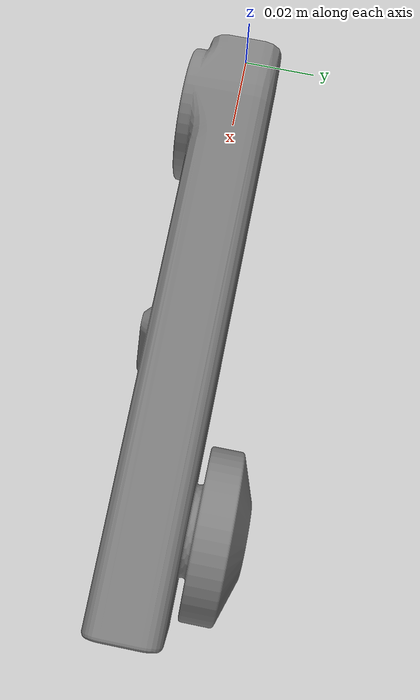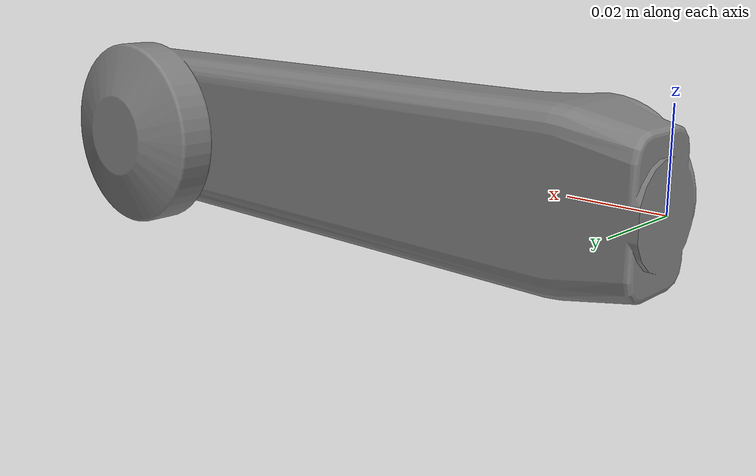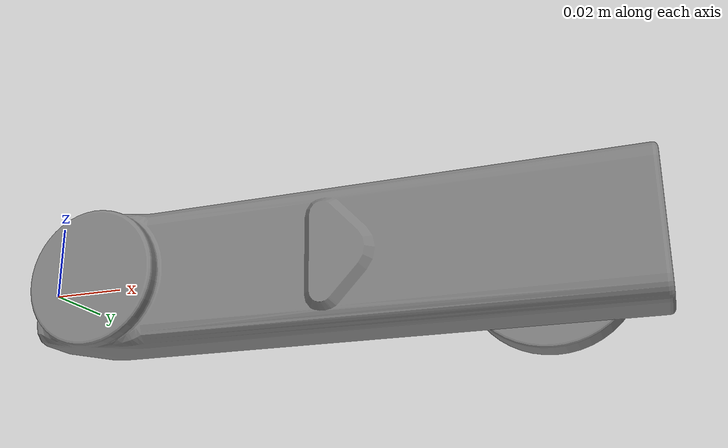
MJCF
<mujoco model="solo12_hip_fe_hr">
  <default>
    <default class="visual">
      <geom group="2" type="mesh" contype="0" conaffinity="0"/>
    </default>
    <default class="collision">
      <geom group="3" type="mesh"/>
    </default>
  </default>
  <asset>
    <mesh file="solo12_hip_fe_hr.obj"/>
    <mesh file="solo12_hip_fe_hr_collision_0.obj"/>
    <mesh file="solo12_hip_fe_hr_collision_1.obj"/>
    <mesh file="solo12_hip_fe_hr_collision_2.obj"/>
    <mesh file="solo12_hip_fe_hr_collision_3.obj"/>
    <mesh file="solo12_hip_fe_hr_collision_4.obj"/>
    <mesh file="solo12_hip_fe_hr_collision_5.obj"/>
    <mesh file="solo12_hip_fe_hr_collision_6.obj"/>
    <mesh file="solo12_hip_fe_hr_collision_7.obj"/>
  </asset>
  <worldbody>
    <body name="solo12_hip_fe_hr">
      <geom mesh="solo12_hip_fe_hr" class="visual"/>
      <geom mesh="solo12_hip_fe_hr_collision_0" class="collision"/>
      <geom mesh="solo12_hip_fe_hr_collision_1" class="collision"/>
      <geom mesh="solo12_hip_fe_hr_collision_2" class="collision"/>
      <geom mesh="solo12_hip_fe_hr_collision_3" class="collision"/>
      <geom mesh="solo12_hip_fe_hr_collision_4" class="collision"/>
      <geom mesh="solo12_hip_fe_hr_collision_5" class="collision"/>
      <geom mesh="solo12_hip_fe_hr_collision_6" class="collision"/>
      <geom mesh="solo12_hip_fe_hr_collision_7" class="collision"/>
    </body>
  </worldbody>
</mujoco>
